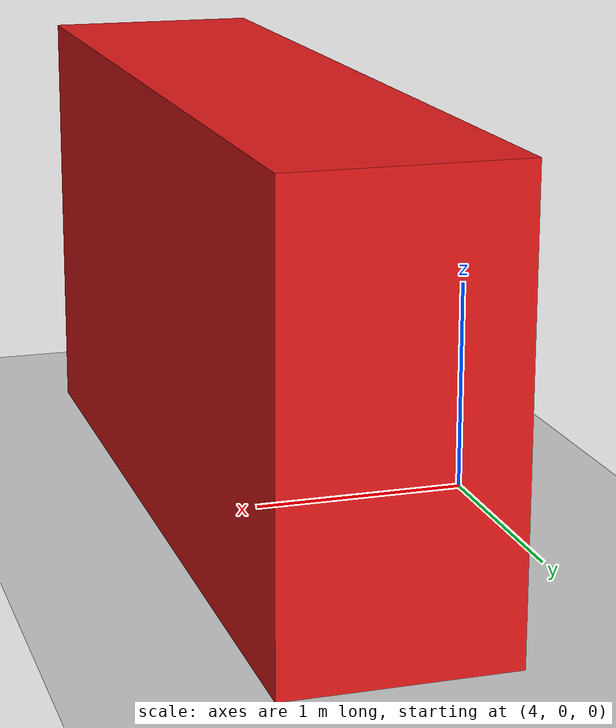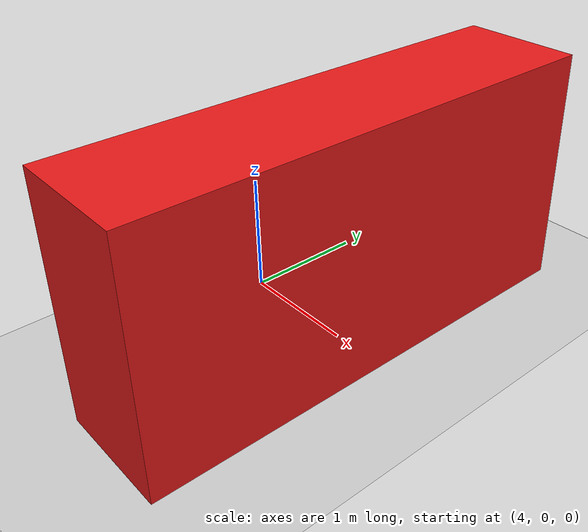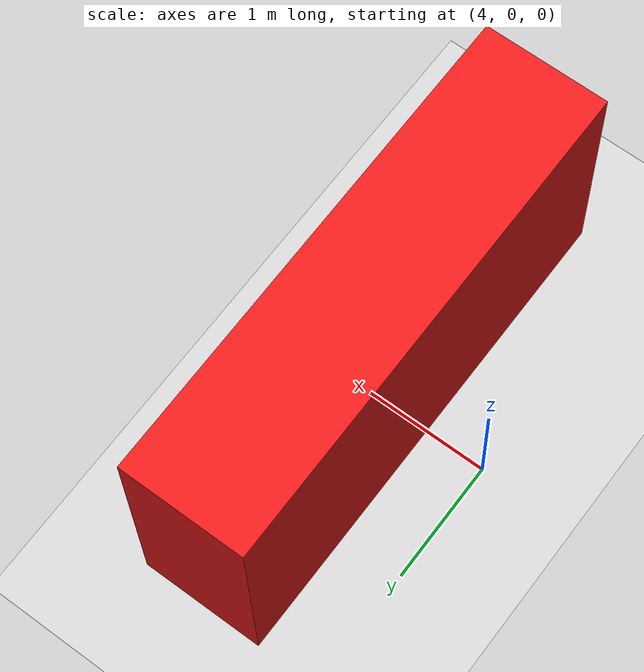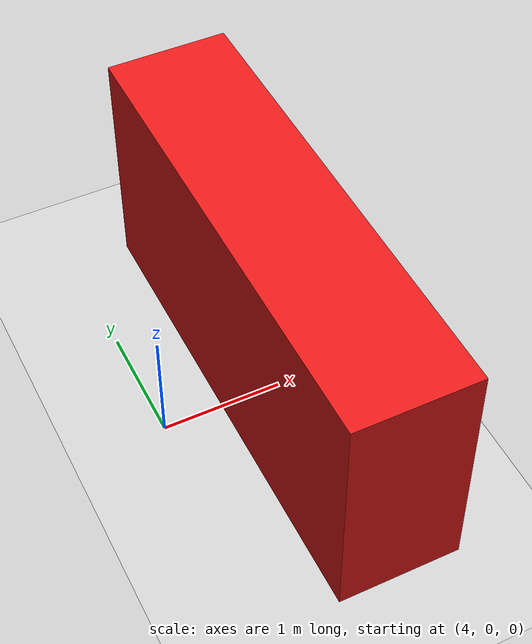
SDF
<?xml version="1.0" ?>
<sdf version="1.9">
  <world name="camera_render_test">
    <plugin filename="gz-sim-physics-system" name="gz::sim::systems::Physics"/>
    <plugin filename="gz-sim-user-commands-system" name="gz::sim::systems::UserCommands"/>
    <plugin filename="gz-sim-scene-broadcaster-system" name="gz::sim::systems::SceneBroadcaster"/>
    <plugin filename="gz-sim-sensors-system" name="gz::sim::systems::Sensors">
      <render_engine>ogre2</render_engine>
    </plugin>

    <light name="sun" type="directional">
      <pose>0 0 10 0 0 0</pose>
      <direction>-0.5 0.2 -1.0</direction>
    </light>

    <model name="ground">
      <static>true</static>
      <link name="link">
        <collision name="collision"><geometry><plane><normal>0 0 1</normal><size>40 40</size></plane></geometry></collision>
        <visual name="visual"><geometry><plane><normal>0 0 1</normal><size>40 40</size></plane></geometry></visual>
      </link>
    </model>

    <model name="camera_targets">
      <static>true</static>
      <pose>5 0 1 0 0 0</pose>
      <link name="box">
        <collision name="collision"><geometry><box><size>1 4 2</size></box></geometry></collision>
        <visual name="visual"><geometry><box><size>1 4 2</size></box></geometry><material><diffuse>0.9 0.1 0.1 1</diffuse></material></visual>
      </link>
    </model>

    <model name="camera_fixture">
      <static>true</static>
      <pose>0 0 1.5 0 0 0</pose>
      <link name="camera_link">
        <sensor name="camera_0" type="camera">
          <always_on>true</always_on>
          <visualize>true</visualize>
          <update_rate>30</update_rate>
          <topic>/camera_0/image</topic>
          <camera>
            <horizontal_fov>1.3962634</horizontal_fov>
            <image><width>640</width><height>480</height><format>R8G8B8</format></image>
            <clip><near>0.05</near><far>100</far></clip>
          </camera>
        </sensor>
      </link>
    </model>
  </world>
</sdf>
